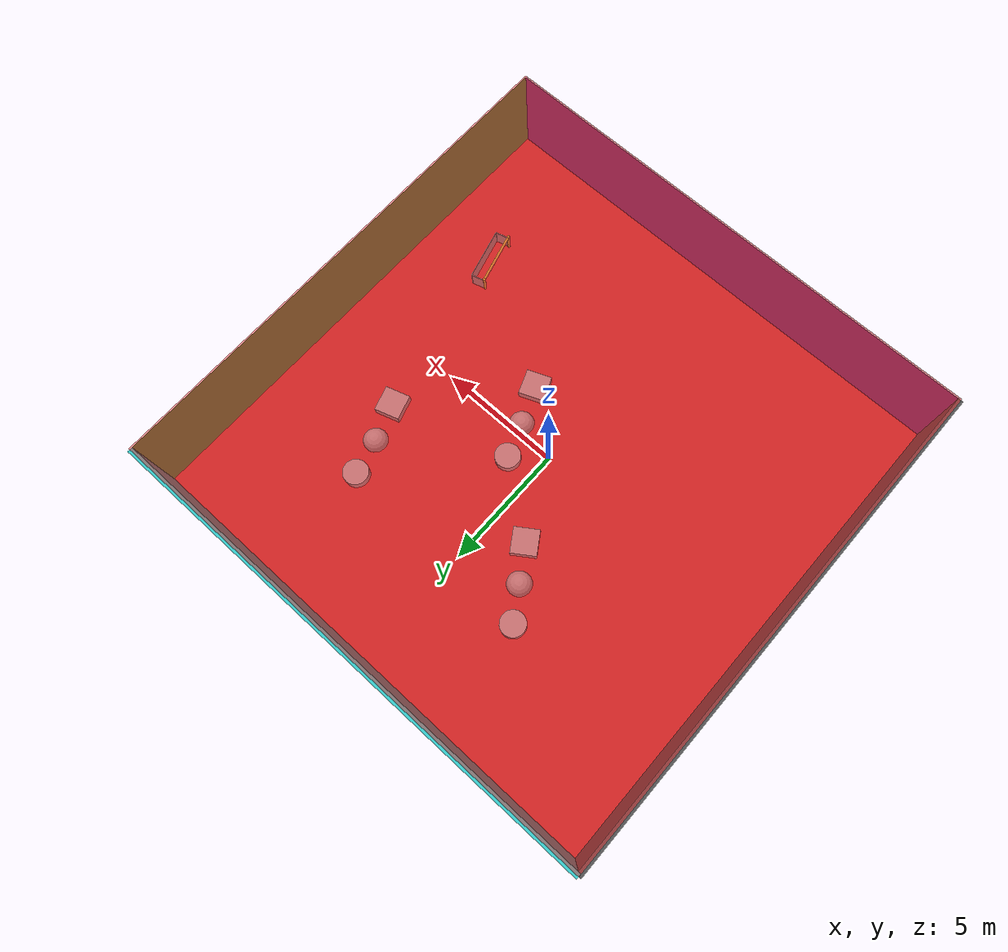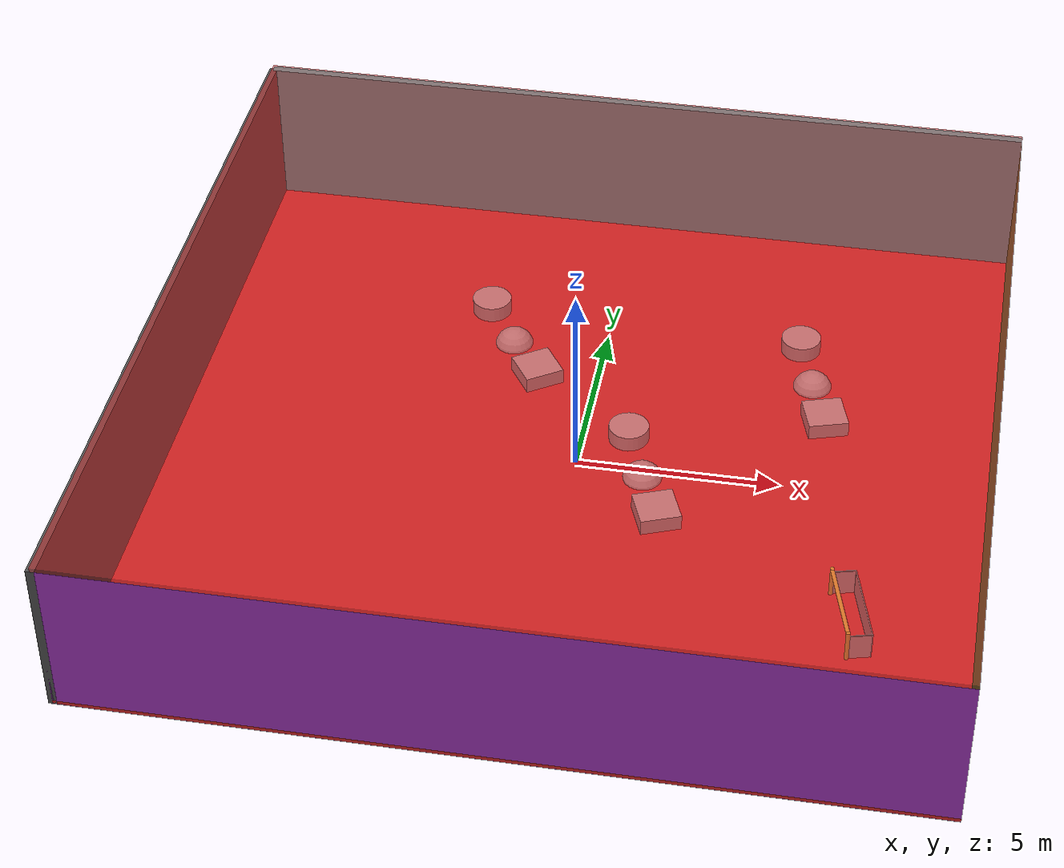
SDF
<sdf version="1.4">
 <world name="default">
  <physics type="ode">
   <max_step_size>0.001</max_step_size>
   <real_time_factor>1</real_time_factor>
   <real_time_update_rate>1000</real_time_update_rate>
   <gravity>0 0 -9.8</gravity>
  </physics>
  <scene><ambient>0.4 0.4 0.4 1</ambient><background>0.7 0.7 0.7 1</background><shadows>1</shadows></scene>
  <model name="Surrounding">
   <static>1</static>
   <link name="Ceiling">
    <collision name="Ceiling_Collision"><geometry><box><size>20 20 0.1</size></box></geometry></collision>
    <visual name="Ceiling_Visual">
     <geometry><box><size>20 20 0.1</size></box></geometry>
     <material>
      <script><uri>file://media/materials/scripts/gazebo.material</uri><name>Gazebo/RedTransparent</name></script>
     </material>
    </visual>
    <pose>0 0 4.05 0 0 0</pose>
   </link>
   <link name="Wall_South">
    <collision name="Wall_South_Collision">
     <geometry><box><size>20 0 4</size></box></geometry>
     <pose>0 0 2 0 -0 0</pose>
    </collision>
    <visual name="Wall_South_Visual">
     <pose>0 0 2 0 -0 0</pose>
     <geometry><box><size>20 0 4</size></box></geometry>
     <material>
      <script><uri>file://media/materials/scripts/gazebo.material</uri><name>Gazebo/Purple</name></script>
     </material>
    </visual>
    <velocity_decay><linear>0</linear><angular>0</angular></velocity_decay>
    <pose>0 -10 0 0 -0 0</pose>
   </link>
   <link name="Wall_East">
    <collision name="Wall_21_Collision">
     <geometry><box><size>20 0 4</size></box></geometry>
     <pose>0 0 2 0 -0 0</pose>
    </collision>
    <visual name="Wall_21_Visual">
     <pose>0 0 2 0 -0 0</pose>
     <geometry><box><size>20 0 4</size></box></geometry>
     <material>
      <script><uri>file://media/materials/scripts/gazebo.material</uri><name>Gazebo/Green</name></script>
     </material>
    </visual>
    <velocity_decay><linear>0</linear><angular>0</angular></velocity_decay>
    <pose>10 0 0 0 -0 1.5708</pose>
   </link>
   <link name="Wall_North">
    <collision name="Wall_22_Collision">
     <geometry><box><size>20 0.2 4</size></box></geometry>
     <pose>0 0 2 0 -0 0</pose>
    </collision>
    <visual name="Wall_22_Visual">
     <pose>0 0 2 0 -0 0</pose>
     <geometry><box><size>20 0.2 4</size></box></geometry>
     <material>
      <script><uri>file://media/materials/scripts/gazebo.material</uri><name>Gazebo/TurquoiseGlow</name></script>
     </material>
    </visual>
    <velocity_decay><linear>0</linear><angular>0</angular></velocity_decay>
    <pose>0 10 0 0 -0 0</pose>
   </link>
   <link name="Wall_West">
    <collision name="Wall_23_Collision">
     <geometry><box><size>20 0.2 4</size></box></geometry>
     <pose>0 0 2 0 -0 0</pose>
    </collision>
    <visual name="Wall_23_Visual">
     <pose>0 0 2 0 -0 0</pose>
     <geometry><box><size>20 0.2 4</size></box></geometry>
     <material>
      <script><uri>file://media/materials/scripts/gazebo.material</uri><name>Gazebo/Road</name></script>
     </material>
    </visual>
    <velocity_decay><linear>0</linear><angular>0</angular></velocity_decay>
    <pose>-10 0 0 0 0 -1.5708</pose>
   </link>
   <link name="Ground_link">
    <collision name="collision">
     <pose>0 0 .05 0 -0 0</pose>
     <geometry><box><size>20 20 0.1</size></box></geometry>
    </collision>
    <visual name="visual">
     <pose>0 0 .05 0 -0 0</pose>
     <geometry><box><size>20 20 0.1</size></box></geometry>
     <material>
      <script><uri>file://media/materials/scripts/gazebo.material</uri><name>Gazebo/RedBright</name></script>
     </material>
    </visual>
   </link>
   <static>1</static>
  </model>
  <spherical_coordinates>
   <surface_model>EARTH_WGS84</surface_model>
   <latitude_deg>0</latitude_deg>
   <longitude_deg>0</longitude_deg>
   <elevation>0</elevation>
   <heading_deg>0</heading_deg>
  </spherical_coordinates>
  <light name="lightball_0" type="diffuse">
   <diffuse>0.8 0.8 0.8 1</diffuse>
   <specular>0.2 0.2 0.2 1</specular>
   <attenuation>
    <range>100</range>
    <constant>0.7</constant>
    <linear>0.01</linear>
    <quadratic>0.001</quadratic>
   </attenuation>
   <direction>-0.5 0.1 -0.9</direction>
   <pose>-7.37456671114 -4.13002540796 2.72074119734 0 0 0</pose>
  </light>
  <light name="lightball_1" type="diffuse">
   <diffuse>0.8 0.8 0.8 1</diffuse>
   <specular>0.2 0.2 0.2 1</specular>
   <attenuation>
    <range>100</range>
    <constant>0.7</constant>
    <linear>0.01</linear>
    <quadratic>0.001</quadratic>
   </attenuation>
   <direction>-0.5 0.1 -0.9</direction>
   <pose>-6.2754036445 -1.60542943202 1.38542902471 0 0 0</pose>
  </light>
  <light name="lightball_2" type="diffuse">
   <diffuse>0.8 0.8 0.8 1</diffuse>
   <specular>0.2 0.2 0.2 1</specular>
   <attenuation>
    <range>100</range>
    <constant>0.7</constant>
    <linear>0.01</linear>
    <quadratic>0.001</quadratic>
   </attenuation>
   <direction>-0.5 0.1 -0.9</direction>
   <pose>-9.3805626072 3.78452333487 2.73707948439 0 0 0</pose>
  </light>
  <light name="lightball_3" type="diffuse">
   <diffuse>0.8 0.8 0.8 1</diffuse>
   <specular>0.2 0.2 0.2 1</specular>
   <attenuation>
    <range>100</range>
    <constant>0.7</constant>
    <linear>0.01</linear>
    <quadratic>0.001</quadratic>
   </attenuation>
   <direction>-0.5 0.1 -0.9</direction>
   <pose>-4.53059641456 7.32838625812 2.3895133771 0 0 0</pose>
  </light>
  <light name="lightball_4" type="diffuse">
   <diffuse>0.8 0.8 0.8 1</diffuse>
   <specular>0.2 0.2 0.2 1</specular>
   <attenuation>
    <range>100</range>
    <constant>0.7</constant>
    <linear>0.01</linear>
    <quadratic>0.001</quadratic>
   </attenuation>
   <direction>-0.5 0.1 -0.9</direction>
   <pose>0.603685673261 8.451794204 3.30509692925 0 0 0</pose>
  </light>
  <light name="lightball_5" type="diffuse">
   <diffuse>0.8 0.8 0.8 1</diffuse>
   <specular>0.2 0.2 0.2 1</specular>
   <attenuation>
    <range>100</range>
    <constant>0.7</constant>
    <linear>0.01</linear>
    <quadratic>0.001</quadratic>
   </attenuation>
   <direction>-0.5 0.1 -0.9</direction>
   <pose>6.08380917606 6.90323900471 2.29563739982 0 0 0</pose>
  </light>
  <light name="lightball_6" type="diffuse">
   <diffuse>0.8 0.8 0.8 1</diffuse>
   <specular>0.2 0.2 0.2 1</specular>
   <attenuation>
    <range>100</range>
    <constant>0.7</constant>
    <linear>0.01</linear>
    <quadratic>0.001</quadratic>
   </attenuation>
   <direction>-0.5 0.1 -0.9</direction>
   <pose>3.15874032743 -7.87791023583 2.23272161046 0 0 0</pose>
  </light>
  <light name="lightball_7" type="diffuse">
   <diffuse>0.8 0.8 0.8 1</diffuse>
   <specular>0.2 0.2 0.2 1</specular>
   <attenuation>
    <range>100</range>
    <constant>0.7</constant>
    <linear>0.01</linear>
    <quadratic>0.001</quadratic>
   </attenuation>
   <direction>-0.5 0.1 -0.9</direction>
   <pose>1.47847077974 9.37450812844 1.89395854244 0 0 0</pose>
  </light>
  <include>
   <uri>model://textured_shapes</uri>
   <pose>-2.34927355592 4.27630604557 0 0 0 0.587198371228</pose>
  </include>
  <include>
   <uri>model://textured_shapes</uri>
   <pose>1.70115644729 -0.369960258756 0 0 0 0.376585118784</pose>
  </include>
  <include>
   <uri>model://textured_shapes</uri>
   <pose>5.40871117473 3.80634691638 0 0 0 0.302359250845</pose>
  </include>
  <include>
   <uri>model://robocup_3Dsim_goal</uri>
   <pose>6.8791760701 -4.66508683924 0 0 0 0.266274331776</pose>
  </include>
 </world>
</sdf>

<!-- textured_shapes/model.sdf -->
<sdf version="1.6">
  <model name="textured_shapes">
    <pose>0 0 0.5 0 0 0</pose>
    <link name="box">
      <pose>0 -1.5 0 0 0 0</pose>
      <collision name="collision">
        <geometry>
          <box>
            <size>1 1 1</size>
          </box>
        </geometry>
      </collision>
      <visual name="visual">
        <geometry>
          <box>
            <size>1 1 1</size>
          </box>
        </geometry>
        <material>
          <script>
            <uri>model://../model_source/models/textured_shapes/materials/scripts</uri>
            <uri>model://../model_source/models/textured_shapes/materials/textures</uri>
            <name>TexturedShape/Squares</name>
          </script>
        </material>
      </visual>
    </link>
    <link name="sphere">
      <collision name="collision">
        <geometry>
          <sphere>
            <radius>0.5</radius>
          </sphere>
        </geometry>
      </collision>
      <visual name="visual">
        <geometry>
          <sphere>
            <radius>0.5</radius>
          </sphere>
        </geometry>
        <material>
          <script>
            <uri>model://../model_source/models/textured_shapes/materials/scripts</uri>
            <uri>model://../model_source/models/textured_shapes/materials/textures</uri>
            <name>TexturedShape/Squares</name>
          </script>
        </material>
      </visual>
    </link>
    <link name="cylinder">
      <pose>0 1.5 0 0 0 0</pose>
      <collision name="collision">
        <geometry>
          <cylinder>
            <radius>0.5</radius>
            <length>1</length>
          </cylinder>
        </geometry>
      </collision>
      <visual name="visual">
        <geometry>
          <cylinder>
            <radius>0.5</radius>
            <length>1</length>
          </cylinder>
        </geometry>
        <material>
          <script>
            <uri>model://../model_source/models/textured_shapes/materials/scripts</uri>
            <uri>model://../model_source/models/textured_shapes/materials/textures</uri>
            <name>TexturedShape/Squares</name>
          </script>
        </material>
      </visual>
    </link>
  </model>
</sdf>

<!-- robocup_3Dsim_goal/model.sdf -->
<sdf version="1.5">
  <model name="robocup_3d_goal">
    <static>true</static>
    <link name="left_post">
      <pose>0 1.05 0.45 0 0 0</pose>
      <collision name="collision">
        <geometry>
          <cylinder>
            <radius>0.05</radius>
            <length>0.9</length>
          </cylinder>
        </geometry>
      </collision>
      <visual name="visual">
        <geometry>
          <cylinder>
            <radius>0.05</radius>
            <length>0.9</length>
          </cylinder>
        </geometry>
        <material>
          <script>
            <uri>file://media/materials/scripts/gazebo.material</uri>
            <name>Gazebo/ZincYellow</name>
          </script>
        </material>
      </visual>
    </link>
    <link name="left_support_horiz_lower">
      <pose>0.30 1.05 0.01 0 0 0</pose>
      <collision name="collision">
        <geometry>
          <box>
            <size>0.50 0.02 0.02</size>
          </box>
        </geometry>
      </collision>
      <visual name="visual">
        <geometry>
          <box>
            <size>0.50 0.02 0.02</size>
          </box>
        </geometry>
        <material>
          <script>
            <uri>file://media/materials/scripts/gazebo.material</uri>
            <name>Gazebo/White</name>
          </script>
        </material>
      </visual>
    </link>
    <link name="left_support_horiz_upper">
      <pose>0.30 1.05 0.79 0 0 0</pose>
      <collision name="collision">
        <geometry>
          <box>
            <size>0.50 0.02 0.02</size>
          </box>
        </geometry>
      </collision>
      <visual name="visual">
        <geometry>
          <box>
            <size>0.50 0.02 0.02</size>
          </box>
        </geometry>
        <material>
          <script>
            <uri>file://media/materials/scripts/gazebo.material</uri>
            <name>Gazebo/White</name>
          </script>
        </material>
      </visual>
    </link>
    <link name="left_support_vertical">
      <pose>0.56 1.05 0.4 0 1.5708 0</pose>
      <collision name="collision">
        <geometry>
          <box>
            <size>0.80 0.02 0.02</size>
          </box>
        </geometry>
      </collision>
      <visual name="visual">
        <geometry>
          <box>
            <size>0.80 0.02 0.02</size>
          </box>
        </geometry>
        <material>
          <script>
            <uri>file://media/materials/scripts/gazebo.material</uri>
            <name>Gazebo/White</name>
          </script>
        </material>
      </visual>
    </link>
    <link name="right_support_horiz_lower">
      <pose>0.30 -1.05 0.01 0 0 0</pose>
      <collision name="collision">
        <geometry>
          <box>
            <size>0.50 0.02 0.02</size>
          </box>
        </geometry>
      </collision>
      <visual name="visual">
        <geometry>
          <box>
            <size>0.50 0.02 0.02</size>
          </box>
        </geometry>
        <material>
          <script>
            <uri>file://media/materials/scripts/gazebo.material</uri>
            <name>Gazebo/White</name>
          </script>
        </material>
      </visual>
    </link>
    <link name="right_support_horiz_upper">
      <pose>0.30 -1.05 0.79 0 0 0</pose>
      <collision name="collision">
        <geometry>
          <box>
            <size>0.50 0.02 0.02</size>
          </box>
        </geometry>
      </collision>
      <visual name="visual">
        <geometry>
          <box>
            <size>0.50 0.02 0.02</size>
          </box>
        </geometry>
        <material>
          <script>
            <uri>file://media/materials/scripts/gazebo.material</uri>
            <name>Gazebo/White</name>
          </script>
        </material>
      </visual>
    </link>
    <link name="right_support_vertical">
      <pose>0.56 -1.05 0.4 0 1.5708 0</pose>
      <collision name="collision">
        <geometry>
          <box>
            <size>0.80 0.02 0.02</size>
          </box>
        </geometry>
      </collision>
      <visual name="visual">
        <geometry>
          <box>
            <size>0.80 0.02 0.02</size>
          </box>
        </geometry>
        <material>
          <script>
            <uri>file://media/materials/scripts/gazebo.material</uri>
            <name>Gazebo/White</name>
          </script>
        </material>
      </visual>
    </link>
    <link name="center_support_horiz_lower">
      <pose>0.56 0 0.01 0 1.5708 0</pose>
      <collision name="collision">
        <geometry>
          <box>
            <size>0.02 2.08 0.02</size>
          </box>
        </geometry>
      </collision>
      <visual name="visual">
        <geometry>
          <box>
            <size>0.02 2.08 0.02</size>
          </box>
        </geometry>
        <material>
          <script>
            <uri>file://media/materials/scripts/gazebo.material</uri>
            <name>Gazebo/White</name>
          </script>
        </material>
      </visual>
    </link>
    <link name="center_support_horiz_upper">
      <pose>0.56 0 0.79 0 1.5708 0</pose>
      <collision name="collision">
        <geometry>
          <box>
            <size>0.02 2.08 0.02</size>
          </box>
        </geometry>
      </collision>
      <visual name="visual">
        <geometry>
          <box>
            <size>0.02 2.08 0.02</size>
          </box>
        </geometry>
        <material>
          <script>
            <uri>file://media/materials/scripts/gazebo.material</uri>
            <name>Gazebo/White</name>
          </script>
        </material>
      </visual>
    </link>
    <link name="right_post">
      <pose>0 -1.05 0.45 0 0 0</pose>
      <collision name="collision">
        <geometry>
          <cylinder>
            <radius>0.05</radius>
            <length>0.9</length>
          </cylinder>
        </geometry>
      </collision>
      <visual name="visual">
        <geometry>
          <cylinder>
            <radius>0.05</radius>
            <length>0.9</length>
          </cylinder>
        </geometry>
        <material>
          <script>
            <uri>file://media/materials/scripts/gazebo.material</uri>
            <name>Gazebo/ZincYellow</name>
          </script>
        </material>
      </visual>
    </link>
    <link name="crossbar">
      <pose>0 0 0.85 1.57 1.57 0</pose>
      <collision name="collision">
        <geometry>
          <cylinder>
            <radius>0.05</radius>
            <length>2.0</length>
          </cylinder>
        </geometry>
      </collision>
      <visual name="visual">
        <geometry>
          <cylinder>
            <radius>0.05</radius>
            <length>2.0</length>
          </cylinder>
        </geometry>
        <material>
          <script>
            <uri>file://media/materials/scripts/gazebo.material</uri>
            <name>Gazebo/ZincYellow</name>
          </script>
        </material>
      </visual>
    </link>
    <link name="center_net">
      <pose>0.56 0 0.40 0 0 0</pose>
      <collision name="collision">
        <geometry>
          <box>
            <size>0.01 2.1 0.80</size>
          </box>
        </geometry>
      </collision>
      <visual name="visual">
        <geometry>
          <box>
            <size>0.01 2.1 0.80</size>
          </box>
        </geometry>
        <material>
          <script>
            <uri>model://../model_source/models/robocup09_spl_field/materials/scripts/</uri>
            <uri>model://../model_source/models/robocup09_spl_field/materials/textures/</uri>
            <name>RoboCup/Net</name>
          </script>
        </material>
      </visual>
    </link>
    <link name="left_net">
      <pose>0.30 1.05 0.40 0 0 0</pose>
      <collision name="collision">
        <geometry>
          <box>
            <size>0.50 0.01 0.76</size>
          </box>
        </geometry>
      </collision>
      <visual name="visual">
        <geometry>
          <box>
            <size>0.50 0.01 0.76</size>
          </box>
        </geometry>
        <material>
          <script>
            <uri>model://../model_source/models/robocup09_spl_field/materials/scripts/</uri>
            <uri>model://../model_source/models/robocup09_spl_field/materials/textures/</uri>
            <name>RoboCup/Net</name>
          </script>
        </material>
      </visual>
    </link>
    <link name="right_net">
      <pose>0.30 -1.05 0.40 0 0 0</pose>
      <collision name="collision">
        <geometry>
          <box>
            <size>0.50 0.01 0.76</size>
          </box>
        </geometry>
      </collision>
      <visual name="visual">
        <geometry>
          <box>
            <size>0.50 0.01 0.76</size>
          </box>
        </geometry>
        <material>
          <script>
            <uri>model://../model_source/models/robocup09_spl_field/materials/scripts/</uri>
            <uri>model://../model_source/models/robocup09_spl_field/materials/textures/</uri>
            <name>RoboCup/Net</name>
          </script>
        </material>
      </visual>
    </link>
  </model>
</sdf>
